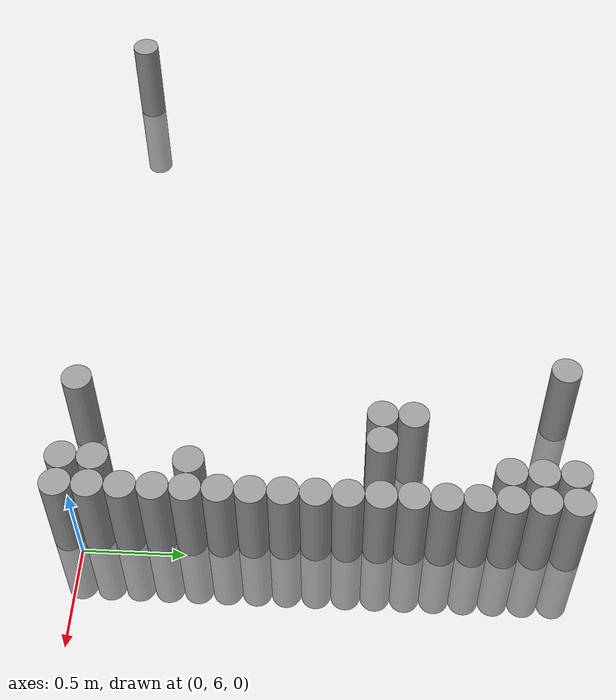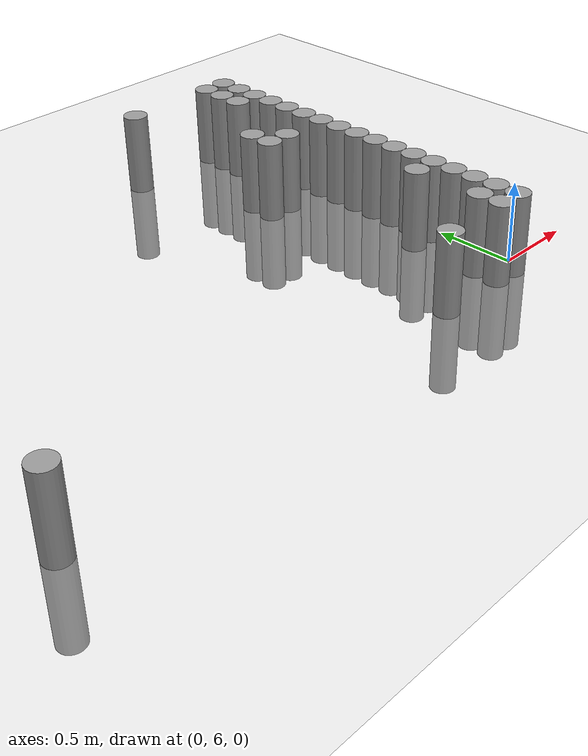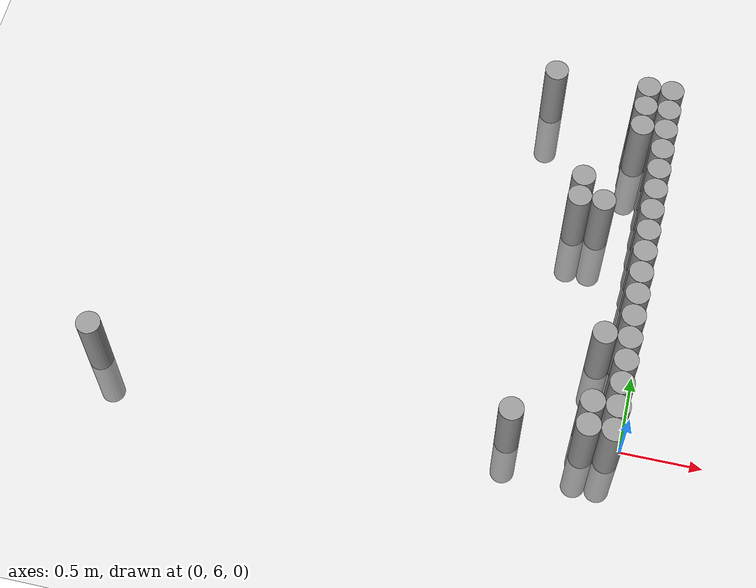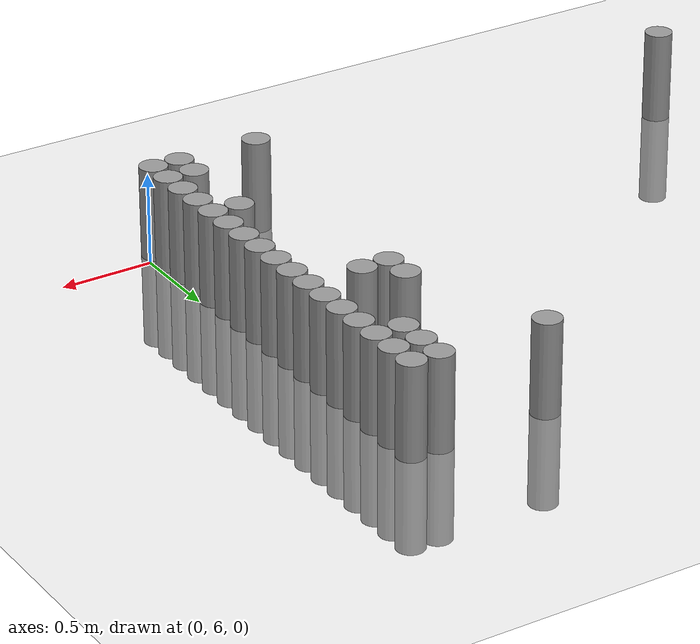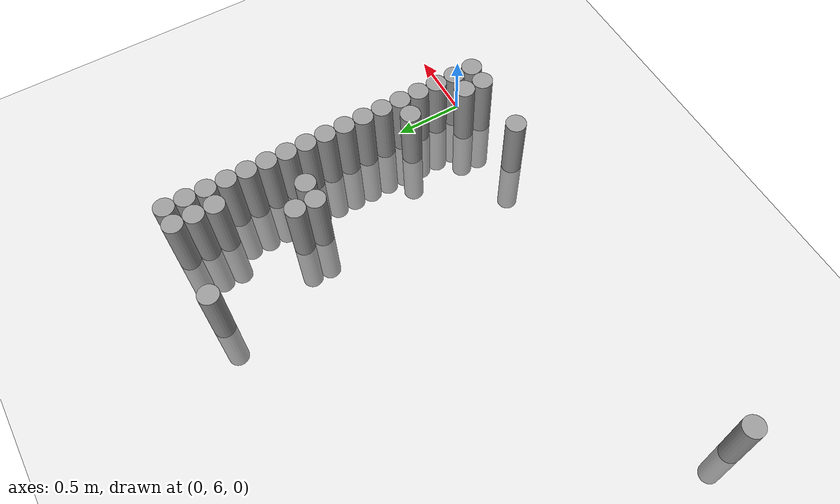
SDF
<sdf version="1.6">
 <world name="default">
  <model name="ground_plane">
   <static>1</static>
   <static>1</static>
   <link name="link">
    <collision name="collision">
     <geometry><plane><normal>0 0 1</normal><size>100 100</size></plane></geometry>
     <surface><friction><ode><mu>100</mu><mu2>50</mu2></ode></friction></surface>
    </collision>
    <visual name="visual">
     <cast_shadows>0</cast_shadows>
     <geometry><plane><normal>0 0 1</normal><size>100 100</size></plane></geometry>
     <material>
      <script><uri>file://media/materials/scripts/gazebo.material</uri><name>Gazebo/Grey</name></script>
     </material>
    </visual>
   </link>
  </model>
  <model name="unit_cylinder_170">
   <static>1</static>
   <pose>-3.225000 5.925000 0.000000 0.000000 0.000000 0.000000</pose>
   <link name="link">
    <inertial>
     <mass>1</mass>
     <inertia><ixx>0.145833</ixx><ixy>0</ixy><ixz>0</ixz><iyy>0.145833</iyy><iyz>0</iyz><izz>0.125</izz></inertia>
    </inertial>
    <collision name="collision">
     <geometry><cylinder><radius>0.075000</radius><length>1</length></cylinder></geometry>
    </collision>
    <visual name="visual">
     <geometry><cylinder><radius>0.075000</radius><length>1</length></cylinder></geometry>
     <material>
      <script><name>Gazebo/Grey</name><uri>file://media/materials/scripts/gazebo.material</uri></script>
     </material>
    </visual>
   </link>
  </model>
  <model name="unit_cylinder_185">
   <static>1</static>
   <pose>-0.825000 8.325000 0.000000 0.000000 0.000000 0.000000</pose>
   <link name="link">
    <inertial>
     <mass>1</mass>
     <inertia><ixx>0.145833</ixx><ixy>0</ixy><ixz>0</ixz><iyy>0.145833</iyy><iyz>0</iyz><izz>0.125</izz></inertia>
    </inertial>
    <collision name="collision">
     <geometry><cylinder><radius>0.075000</radius><length>1</length></cylinder></geometry>
    </collision>
    <visual name="visual">
     <geometry><cylinder><radius>0.075000</radius><length>1</length></cylinder></geometry>
     <material>
      <script><name>Gazebo/Grey</name><uri>file://media/materials/scripts/gazebo.material</uri></script>
     </material>
    </visual>
   </link>
  </model>
  <model name="unit_cylinder_188">
   <static>1</static>
   <pose>-0.675000 5.925000 0.000000 0.000000 0.000000 0.000000</pose>
   <link name="link">
    <inertial>
     <mass>1</mass>
     <inertia><ixx>0.145833</ixx><ixy>0</ixy><ixz>0</ixz><iyy>0.145833</iyy><iyz>0</iyz><izz>0.125</izz></inertia>
    </inertial>
    <collision name="collision">
     <geometry><cylinder><radius>0.075000</radius><length>1</length></cylinder></geometry>
    </collision>
    <visual name="visual">
     <geometry><cylinder><radius>0.075000</radius><length>1</length></cylinder></geometry>
     <material>
      <script><name>Gazebo/Grey</name><uri>file://media/materials/scripts/gazebo.material</uri></script>
     </material>
    </visual>
   </link>
  </model>
  <model name="unit_cylinder_191">
   <static>1</static>
   <pose>-0.525000 7.425000 0.000000 0.000000 0.000000 0.000000</pose>
   <link name="link">
    <inertial>
     <mass>1</mass>
     <inertia><ixx>0.145833</ixx><ixy>0</ixy><ixz>0</ixz><iyy>0.145833</iyy><iyz>0</iyz><izz>0.125</izz></inertia>
    </inertial>
    <collision name="collision">
     <geometry><cylinder><radius>0.075000</radius><length>1</length></cylinder></geometry>
    </collision>
    <visual name="visual">
     <geometry><cylinder><radius>0.075000</radius><length>1</length></cylinder></geometry>
     <material>
      <script><name>Gazebo/Grey</name><uri>file://media/materials/scripts/gazebo.material</uri></script>
     </material>
    </visual>
   </link>
  </model>
  <model name="unit_cylinder_192">
   <static>1</static>
   <pose>-0.525000 7.575000 0.000000 0.000000 0.000000 0.000000</pose>
   <link name="link">
    <inertial>
     <mass>1</mass>
     <inertia><ixx>0.145833</ixx><ixy>0</ixy><ixz>0</ixz><iyy>0.145833</iyy><iyz>0</iyz><izz>0.125</izz></inertia>
    </inertial>
    <collision name="collision">
     <geometry><cylinder><radius>0.075000</radius><length>1</length></cylinder></geometry>
    </collision>
    <visual name="visual">
     <geometry><cylinder><radius>0.075000</radius><length>1</length></cylinder></geometry>
     <material>
      <script><name>Gazebo/Grey</name><uri>file://media/materials/scripts/gazebo.material</uri></script>
     </material>
    </visual>
   </link>
  </model>
  <model name="unit_cylinder_194">
   <static>1</static>
   <pose>-0.375000 7.425000 0.000000 0.000000 0.000000 0.000000</pose>
   <link name="link">
    <inertial>
     <mass>1</mass>
     <inertia><ixx>0.145833</ixx><ixy>0</ixy><ixz>0</ixz><iyy>0.145833</iyy><iyz>0</iyz><izz>0.125</izz></inertia>
    </inertial>
    <collision name="collision">
     <geometry><cylinder><radius>0.075000</radius><length>1</length></cylinder></geometry>
    </collision>
    <visual name="visual">
     <geometry><cylinder><radius>0.075000</radius><length>1</length></cylinder></geometry>
     <material>
      <script><name>Gazebo/Grey</name><uri>file://media/materials/scripts/gazebo.material</uri></script>
     </material>
    </visual>
   </link>
  </model>
  <model name="unit_cylinder_197">
   <static>1</static>
   <pose>-0.225000 5.925000 0.000000 0.000000 0.000000 0.000000</pose>
   <link name="link">
    <inertial>
     <mass>1</mass>
     <inertia><ixx>0.145833</ixx><ixy>0</ixy><ixz>0</ixz><iyy>0.145833</iyy><iyz>0</iyz><izz>0.125</izz></inertia>
    </inertial>
    <collision name="collision">
     <geometry><cylinder><radius>0.075000</radius><length>1</length></cylinder></geometry>
    </collision>
    <visual name="visual">
     <geometry><cylinder><radius>0.075000</radius><length>1</length></cylinder></geometry>
     <material>
      <script><name>Gazebo/Grey</name><uri>file://media/materials/scripts/gazebo.material</uri></script>
     </material>
    </visual>
   </link>
  </model>
  <model name="unit_cylinder_198">
   <static>1</static>
   <pose>-0.225000 6.075000 0.000000 0.000000 0.000000 0.000000</pose>
   <link name="link">
    <inertial>
     <mass>1</mass>
     <inertia><ixx>0.145833</ixx><ixy>0</ixy><ixz>0</ixz><iyy>0.145833</iyy><iyz>0</iyz><izz>0.125</izz></inertia>
    </inertial>
    <collision name="collision">
     <geometry><cylinder><radius>0.075000</radius><length>1</length></cylinder></geometry>
    </collision>
    <visual name="visual">
     <geometry><cylinder><radius>0.075000</radius><length>1</length></cylinder></geometry>
     <material>
      <script><name>Gazebo/Grey</name><uri>file://media/materials/scripts/gazebo.material</uri></script>
     </material>
    </visual>
   </link>
  </model>
  <model name="unit_cylinder_199">
   <static>1</static>
   <pose>-0.225000 6.525000 0.000000 0.000000 0.000000 0.000000</pose>
   <link name="link">
    <inertial>
     <mass>1</mass>
     <inertia><ixx>0.145833</ixx><ixy>0</ixy><ixz>0</ixz><iyy>0.145833</iyy><iyz>0</iyz><izz>0.125</izz></inertia>
    </inertial>
    <collision name="collision">
     <geometry><cylinder><radius>0.075000</radius><length>1</length></cylinder></geometry>
    </collision>
    <visual name="visual">
     <geometry><cylinder><radius>0.075000</radius><length>1</length></cylinder></geometry>
     <material>
      <script><name>Gazebo/Grey</name><uri>file://media/materials/scripts/gazebo.material</uri></script>
     </material>
    </visual>
   </link>
  </model>
  <model name="unit_cylinder_200">
   <static>1</static>
   <pose>-0.225000 8.025000 0.000000 0.000000 0.000000 0.000000</pose>
   <link name="link">
    <inertial>
     <mass>1</mass>
     <inertia><ixx>0.145833</ixx><ixy>0</ixy><ixz>0</ixz><iyy>0.145833</iyy><iyz>0</iyz><izz>0.125</izz></inertia>
    </inertial>
    <collision name="collision">
     <geometry><cylinder><radius>0.075000</radius><length>1</length></cylinder></geometry>
    </collision>
    <visual name="visual">
     <geometry><cylinder><radius>0.075000</radius><length>1</length></cylinder></geometry>
     <material>
      <script><name>Gazebo/Grey</name><uri>file://media/materials/scripts/gazebo.material</uri></script>
     </material>
    </visual>
   </link>
  </model>
  <model name="unit_cylinder_201">
   <static>1</static>
   <pose>-0.225000 8.175000 0.000000 0.000000 0.000000 0.000000</pose>
   <link name="link">
    <inertial>
     <mass>1</mass>
     <inertia><ixx>0.145833</ixx><ixy>0</ixy><ixz>0</ixz><iyy>0.145833</iyy><iyz>0</iyz><izz>0.125</izz></inertia>
    </inertial>
    <collision name="collision">
     <geometry><cylinder><radius>0.075000</radius><length>1</length></cylinder></geometry>
    </collision>
    <visual name="visual">
     <geometry><cylinder><radius>0.075000</radius><length>1</length></cylinder></geometry>
     <material>
      <script><name>Gazebo/Grey</name><uri>file://media/materials/scripts/gazebo.material</uri></script>
     </material>
    </visual>
   </link>
  </model>
  <model name="unit_cylinder_202">
   <static>1</static>
   <pose>-0.225000 8.325000 0.000000 0.000000 0.000000 0.000000</pose>
   <link name="link">
    <inertial>
     <mass>1</mass>
     <inertia><ixx>0.145833</ixx><ixy>0</ixy><ixz>0</ixz><iyy>0.145833</iyy><iyz>0</iyz><izz>0.125</izz></inertia>
    </inertial>
    <collision name="collision">
     <geometry><cylinder><radius>0.075000</radius><length>1</length></cylinder></geometry>
    </collision>
    <visual name="visual">
     <geometry><cylinder><radius>0.075000</radius><length>1</length></cylinder></geometry>
     <material>
      <script><name>Gazebo/Grey</name><uri>file://media/materials/scripts/gazebo.material</uri></script>
     </material>
    </visual>
   </link>
  </model>
  <model name="unit_cylinder_211">
   <static>1</static>
   <pose>-0.075000 5.925000 0.000000 0.000000 0.000000 0.000000</pose>
   <link name="link">
    <inertial>
     <mass>1</mass>
     <inertia><ixx>0.145833</ixx><ixy>0</ixy><ixz>0</ixz><iyy>0.145833</iyy><iyz>0</iyz><izz>0.125</izz></inertia>
    </inertial>
    <collision name="collision">
     <geometry><cylinder><radius>0.075000</radius><length>1</length></cylinder></geometry>
    </collision>
    <visual name="visual">
     <geometry><cylinder><radius>0.075000</radius><length>1</length></cylinder></geometry>
     <material>
      <script><name>Gazebo/Grey</name><uri>file://media/materials/scripts/gazebo.material</uri></script>
     </material>
    </visual>
   </link>
  </model>
  <model name="unit_cylinder_212">
   <static>1</static>
   <pose>-0.075000 6.075000 0.000000 0.000000 0.000000 0.000000</pose>
   <link name="link">
    <inertial>
     <mass>1</mass>
     <inertia><ixx>0.145833</ixx><ixy>0</ixy><ixz>0</ixz><iyy>0.145833</iyy><iyz>0</iyz><izz>0.125</izz></inertia>
    </inertial>
    <collision name="collision">
     <geometry><cylinder><radius>0.075000</radius><length>1</length></cylinder></geometry>
    </collision>
    <visual name="visual">
     <geometry><cylinder><radius>0.075000</radius><length>1</length></cylinder></geometry>
     <material>
      <script><name>Gazebo/Grey</name><uri>file://media/materials/scripts/gazebo.material</uri></script>
     </material>
    </visual>
   </link>
  </model>
  <model name="unit_cylinder_213">
   <static>1</static>
   <pose>-0.075000 6.225000 0.000000 0.000000 0.000000 0.000000</pose>
   <link name="link">
    <inertial>
     <mass>1</mass>
     <inertia><ixx>0.145833</ixx><ixy>0</ixy><ixz>0</ixz><iyy>0.145833</iyy><iyz>0</iyz><izz>0.125</izz></inertia>
    </inertial>
    <collision name="collision">
     <geometry><cylinder><radius>0.075000</radius><length>1</length></cylinder></geometry>
    </collision>
    <visual name="visual">
     <geometry><cylinder><radius>0.075000</radius><length>1</length></cylinder></geometry>
     <material>
      <script><name>Gazebo/Grey</name><uri>file://media/materials/scripts/gazebo.material</uri></script>
     </material>
    </visual>
   </link>
  </model>
  <model name="unit_cylinder_214">
   <static>1</static>
   <pose>-0.075000 6.375000 0.000000 0.000000 0.000000 0.000000</pose>
   <link name="link">
    <inertial>
     <mass>1</mass>
     <inertia><ixx>0.145833</ixx><ixy>0</ixy><ixz>0</ixz><iyy>0.145833</iyy><iyz>0</iyz><izz>0.125</izz></inertia>
    </inertial>
    <collision name="collision">
     <geometry><cylinder><radius>0.075000</radius><length>1</length></cylinder></geometry>
    </collision>
    <visual name="visual">
     <geometry><cylinder><radius>0.075000</radius><length>1</length></cylinder></geometry>
     <material>
      <script><name>Gazebo/Grey</name><uri>file://media/materials/scripts/gazebo.material</uri></script>
     </material>
    </visual>
   </link>
  </model>
  <model name="unit_cylinder_215">
   <static>1</static>
   <pose>-0.075000 6.525000 0.000000 0.000000 0.000000 0.000000</pose>
   <link name="link">
    <inertial>
     <mass>1</mass>
     <inertia><ixx>0.145833</ixx><ixy>0</ixy><ixz>0</ixz><iyy>0.145833</iyy><iyz>0</iyz><izz>0.125</izz></inertia>
    </inertial>
    <collision name="collision">
     <geometry><cylinder><radius>0.075000</radius><length>1</length></cylinder></geometry>
    </collision>
    <visual name="visual">
     <geometry><cylinder><radius>0.075000</radius><length>1</length></cylinder></geometry>
     <material>
      <script><name>Gazebo/Grey</name><uri>file://media/materials/scripts/gazebo.material</uri></script>
     </material>
    </visual>
   </link>
  </model>
  <model name="unit_cylinder_216">
   <static>1</static>
   <pose>-0.075000 6.675000 0.000000 0.000000 0.000000 0.000000</pose>
   <link name="link">
    <inertial>
     <mass>1</mass>
     <inertia><ixx>0.145833</ixx><ixy>0</ixy><ixz>0</ixz><iyy>0.145833</iyy><iyz>0</iyz><izz>0.125</izz></inertia>
    </inertial>
    <collision name="collision">
     <geometry><cylinder><radius>0.075000</radius><length>1</length></cylinder></geometry>
    </collision>
    <visual name="visual">
     <geometry><cylinder><radius>0.075000</radius><length>1</length></cylinder></geometry>
     <material>
      <script><name>Gazebo/Grey</name><uri>file://media/materials/scripts/gazebo.material</uri></script>
     </material>
    </visual>
   </link>
  </model>
  <model name="unit_cylinder_217">
   <static>1</static>
   <pose>-0.075000 6.825000 0.000000 0.000000 0.000000 0.000000</pose>
   <link name="link">
    <inertial>
     <mass>1</mass>
     <inertia><ixx>0.145833</ixx><ixy>0</ixy><ixz>0</ixz><iyy>0.145833</iyy><iyz>0</iyz><izz>0.125</izz></inertia>
    </inertial>
    <collision name="collision">
     <geometry><cylinder><radius>0.075000</radius><length>1</length></cylinder></geometry>
    </collision>
    <visual name="visual">
     <geometry><cylinder><radius>0.075000</radius><length>1</length></cylinder></geometry>
     <material>
      <script><name>Gazebo/Grey</name><uri>file://media/materials/scripts/gazebo.material</uri></script>
     </material>
    </visual>
   </link>
  </model>
  <model name="unit_cylinder_218">
   <static>1</static>
   <pose>-0.075000 6.975000 0.000000 0.000000 0.000000 0.000000</pose>
   <link name="link">
    <inertial>
     <mass>1</mass>
     <inertia><ixx>0.145833</ixx><ixy>0</ixy><ixz>0</ixz><iyy>0.145833</iyy><iyz>0</iyz><izz>0.125</izz></inertia>
    </inertial>
    <collision name="collision">
     <geometry><cylinder><radius>0.075000</radius><length>1</length></cylinder></geometry>
    </collision>
    <visual name="visual">
     <geometry><cylinder><radius>0.075000</radius><length>1</length></cylinder></geometry>
     <material>
      <script><name>Gazebo/Grey</name><uri>file://media/materials/scripts/gazebo.material</uri></script>
     </material>
    </visual>
   </link>
  </model>
  <model name="unit_cylinder_219">
   <static>1</static>
   <pose>-0.075000 7.125000 0.000000 0.000000 0.000000 0.000000</pose>
   <link name="link">
    <inertial>
     <mass>1</mass>
     <inertia><ixx>0.145833</ixx><ixy>0</ixy><ixz>0</ixz><iyy>0.145833</iyy><iyz>0</iyz><izz>0.125</izz></inertia>
    </inertial>
    <collision name="collision">
     <geometry><cylinder><radius>0.075000</radius><length>1</length></cylinder></geometry>
    </collision>
    <visual name="visual">
     <geometry><cylinder><radius>0.075000</radius><length>1</length></cylinder></geometry>
     <material>
      <script><name>Gazebo/Grey</name><uri>file://media/materials/scripts/gazebo.material</uri></script>
     </material>
    </visual>
   </link>
  </model>
  <model name="unit_cylinder_220">
   <static>1</static>
   <pose>-0.075000 7.275000 0.000000 0.000000 0.000000 0.000000</pose>
   <link name="link">
    <inertial>
     <mass>1</mass>
     <inertia><ixx>0.145833</ixx><ixy>0</ixy><ixz>0</ixz><iyy>0.145833</iyy><iyz>0</iyz><izz>0.125</izz></inertia>
    </inertial>
    <collision name="collision">
     <geometry><cylinder><radius>0.075000</radius><length>1</length></cylinder></geometry>
    </collision>
    <visual name="visual">
     <geometry><cylinder><radius>0.075000</radius><length>1</length></cylinder></geometry>
     <material>
      <script><name>Gazebo/Grey</name><uri>file://media/materials/scripts/gazebo.material</uri></script>
     </material>
    </visual>
   </link>
  </model>
  <model name="unit_cylinder_221">
   <static>1</static>
   <pose>-0.075000 7.425000 0.000000 0.000000 0.000000 0.000000</pose>
   <link name="link">
    <inertial>
     <mass>1</mass>
     <inertia><ixx>0.145833</ixx><ixy>0</ixy><ixz>0</ixz><iyy>0.145833</iyy><iyz>0</iyz><izz>0.125</izz></inertia>
    </inertial>
    <collision name="collision">
     <geometry><cylinder><radius>0.075000</radius><length>1</length></cylinder></geometry>
    </collision>
    <visual name="visual">
     <geometry><cylinder><radius>0.075000</radius><length>1</length></cylinder></geometry>
     <material>
      <script><name>Gazebo/Grey</name><uri>file://media/materials/scripts/gazebo.material</uri></script>
     </material>
    </visual>
   </link>
  </model>
  <model name="unit_cylinder_222">
   <static>1</static>
   <pose>-0.075000 7.575000 0.000000 0.000000 0.000000 0.000000</pose>
   <link name="link">
    <inertial>
     <mass>1</mass>
     <inertia><ixx>0.145833</ixx><ixy>0</ixy><ixz>0</ixz><iyy>0.145833</iyy><iyz>0</iyz><izz>0.125</izz></inertia>
    </inertial>
    <collision name="collision">
     <geometry><cylinder><radius>0.075000</radius><length>1</length></cylinder></geometry>
    </collision>
    <visual name="visual">
     <geometry><cylinder><radius>0.075000</radius><length>1</length></cylinder></geometry>
     <material>
      <script><name>Gazebo/Grey</name><uri>file://media/materials/scripts/gazebo.material</uri></script>
     </material>
    </visual>
   </link>
  </model>
  <model name="unit_cylinder_223">
   <static>1</static>
   <pose>-0.075000 7.725000 0.000000 0.000000 0.000000 0.000000</pose>
   <link name="link">
    <inertial>
     <mass>1</mass>
     <inertia><ixx>0.145833</ixx><ixy>0</ixy><ixz>0</ixz><iyy>0.145833</iyy><iyz>0</iyz><izz>0.125</izz></inertia>
    </inertial>
    <collision name="collision">
     <geometry><cylinder><radius>0.075000</radius><length>1</length></cylinder></geometry>
    </collision>
    <visual name="visual">
     <geometry><cylinder><radius>0.075000</radius><length>1</length></cylinder></geometry>
     <material>
      <script><name>Gazebo/Grey</name><uri>file://media/materials/scripts/gazebo.material</uri></script>
     </material>
    </visual>
   </link>
  </model>
  <model name="unit_cylinder_224">
   <static>1</static>
   <pose>-0.075000 7.875000 0.000000 0.000000 0.000000 0.000000</pose>
   <link name="link">
    <inertial>
     <mass>1</mass>
     <inertia><ixx>0.145833</ixx><ixy>0</ixy><ixz>0</ixz><iyy>0.145833</iyy><iyz>0</iyz><izz>0.125</izz></inertia>
    </inertial>
    <collision name="collision">
     <geometry><cylinder><radius>0.075000</radius><length>1</length></cylinder></geometry>
    </collision>
    <visual name="visual">
     <geometry><cylinder><radius>0.075000</radius><length>1</length></cylinder></geometry>
     <material>
      <script><name>Gazebo/Grey</name><uri>file://media/materials/scripts/gazebo.material</uri></script>
     </material>
    </visual>
   </link>
  </model>
  <model name="unit_cylinder_225">
   <static>1</static>
   <pose>-0.075000 8.025000 0.000000 0.000000 0.000000 0.000000</pose>
   <link name="link">
    <inertial>
     <mass>1</mass>
     <inertia><ixx>0.145833</ixx><ixy>0</ixy><ixz>0</ixz><iyy>0.145833</iyy><iyz>0</iyz><izz>0.125</izz></inertia>
    </inertial>
    <collision name="collision">
     <geometry><cylinder><radius>0.075000</radius><length>1</length></cylinder></geometry>
    </collision>
    <visual name="visual">
     <geometry><cylinder><radius>0.075000</radius><length>1</length></cylinder></geometry>
     <material>
      <script><name>Gazebo/Grey</name><uri>file://media/materials/scripts/gazebo.material</uri></script>
     </material>
    </visual>
   </link>
  </model>
  <model name="unit_cylinder_226">
   <static>1</static>
   <pose>-0.075000 8.175000 0.000000 0.000000 0.000000 0.000000</pose>
   <link name="link">
    <inertial>
     <mass>1</mass>
     <inertia><ixx>0.145833</ixx><ixy>0</ixy><ixz>0</ixz><iyy>0.145833</iyy><iyz>0</iyz><izz>0.125</izz></inertia>
    </inertial>
    <collision name="collision">
     <geometry><cylinder><radius>0.075000</radius><length>1</length></cylinder></geometry>
    </collision>
    <visual name="visual">
     <geometry><cylinder><radius>0.075000</radius><length>1</length></cylinder></geometry>
     <material>
      <script><name>Gazebo/Grey</name><uri>file://media/materials/scripts/gazebo.material</uri></script>
     </material>
    </visual>
   </link>
  </model>
  <model name="unit_cylinder_227">
   <static>1</static>
   <pose>-0.075000 8.325000 0.000000 0.000000 0.000000 0.000000</pose>
   <link name="link">
    <inertial>
     <mass>1</mass>
     <inertia><ixx>0.145833</ixx><ixy>0</ixy><ixz>0</ixz><iyy>0.145833</iyy><iyz>0</iyz><izz>0.125</izz></inertia>
    </inertial>
    <collision name="collision">
     <geometry><cylinder><radius>0.075000</radius><length>1</length></cylinder></geometry>
    </collision>
    <visual name="visual">
     <geometry><cylinder><radius>0.075000</radius><length>1</length></cylinder></geometry>
     <material>
      <script><name>Gazebo/Grey</name><uri>file://media/materials/scripts/gazebo.material</uri></script>
     </material>
    </visual>
   </link>
  </model>
 </world>
</sdf>
